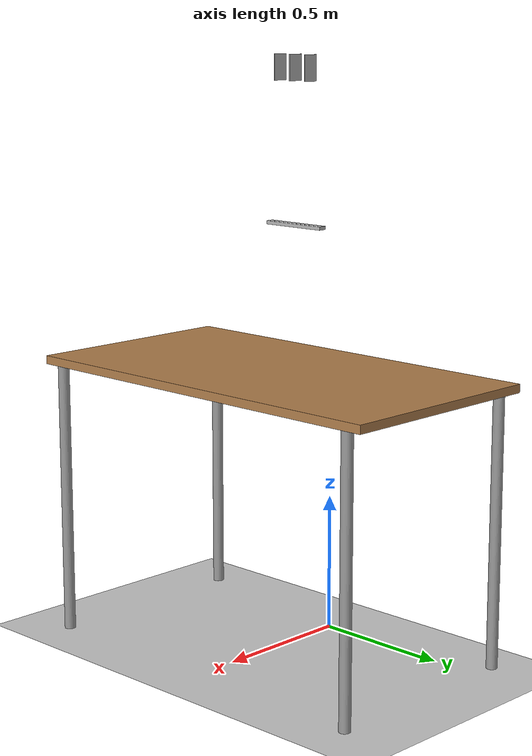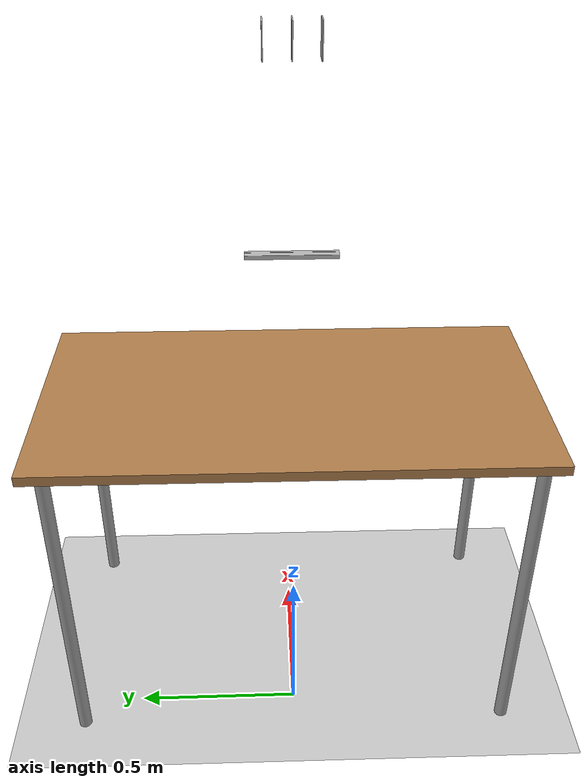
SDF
<?xml version="1.0" ?>
<sdf version="1.6">
  <world name="CRANE-X7 with card stand">

    <include>
      <uri>model://sun</uri>
    </include>

    <model name="table">
      <include>
        <uri>model://table</uri>
      </include>

      <!-- X7を机の端に配置するため、机を移動、回転する -->
      <pose>0.29 0 0 0 0 1.5708</pose>
    </model>

    <model name="card_stand">
      <include>
        <uri>model://card_stand</uri>
      </include>

      <pose>0.20 -0.125 1.5 0 0 1.5708</pose>
    </model>

    <model name="card0">
	<include>
		<uri>model://card</uri>
	</include>

	<pose>0.189 0 1.54 0 0 0</pose>
    </model>

    <model name="card1">
	    <include>
		    <uri>model://card</uri>
	    </include>

	    <pose>0.189 0.07 1.54 0 0 0</pose>
    </model>

    <model name="card2">
	    <include>
		    <uri>model://card</uri>
	    </include>

	    <pose>0.189 -0.07 1.54 0 0 0</pose>
    </model>

    <model name="ground_plane">
      <include>
        <uri>model://ground_plane</uri>
      </include>

      <joint name='ground_joint' type='fixed'>
        <parent>ground_plane::link</parent>
        <child>table::link</child>
      </joint>
    </model>
  </world>
</sdf>

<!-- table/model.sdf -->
<sdf version="1.5">
  <model name="table">
    <static>true</static>
    <link name="link">
      <collision name="surface">
        <pose>0 0 1.0 0 0 0</pose>
        <geometry>
          <box>
            <size>1.5 0.8 0.03</size>
          </box>
        </geometry>
        <surface>
          <friction>
            <ode>
              <mu>0.6</mu>
              <mu2>0.6</mu2>
            </ode>
          </friction>
        </surface>
      </collision>
      <visual name="visual1">
        <pose>0 0 1.0 0 0 0</pose>
        <geometry>
          <box>
            <size>1.5 0.8 0.03</size>
          </box>
        </geometry>
        <material>
          <script>
            <uri>model://media/materials/scripts/gazebo.material</uri>
            <name>Gazebo/Wood</name>
          </script>
        </material>
      </visual>
      <collision name="front_left_leg">
        <pose>0.68 0.38 0.5 0 0 0</pose>
        <geometry>
          <cylinder>
            <radius>0.02</radius>
            <length>1.0</length>
          </cylinder>
        </geometry>
      </collision>
      <visual name="front_left_leg">
        <pose>0.68 0.38 0.5 0 0 0</pose>
        <geometry>
          <cylinder>
            <radius>0.02</radius>
            <length>1.0</length>
          </cylinder>
        </geometry>
        <material>
          <script>
            <uri>model://media/materials/scripts/gazebo.material</uri>
            <name>Gazebo/Grey</name>
          </script>
        </material>
      </visual>
      <collision name="front_right_leg">
        <pose>0.68 -0.38 0.5 0 0 0</pose>
        <geometry>
          <cylinder>
            <radius>0.02</radius>
            <length>1.0</length>
          </cylinder>
        </geometry>
      </collision>
      <visual name="front_right_leg">
        <pose>0.68 -0.38 0.5 0 0 0</pose>
        <geometry>
          <cylinder>
            <radius>0.02</radius>
            <length>1.0</length>
          </cylinder>
        </geometry>
        <material>
          <script>
            <uri>model://media/materials/scripts/gazebo.material</uri>
            <name>Gazebo/Grey</name>
          </script>
        </material>
      </visual>
      <collision name="back_right_leg">
        <pose>-0.68 -0.38 0.5 0 0 0</pose>
        <geometry>
          <cylinder>
            <radius>0.02</radius>
            <length>1.0</length>
          </cylinder>
        </geometry>
      </collision>
      <visual name="back_right_leg">
        <pose>-0.68 -0.38 0.5 0 0 0</pose>
        <geometry>
          <cylinder>
            <radius>0.02</radius>
            <length>1.0</length>
          </cylinder>
        </geometry>
        <material>
          <script>
            <uri>model://media/materials/scripts/gazebo.material</uri>
            <name>Gazebo/Grey</name>
          </script>
        </material>
      </visual>
      <collision name="back_left_leg">
        <pose>-0.68 0.38 0.5 0 0 0</pose>
        <geometry>
          <cylinder>
            <radius>0.02</radius>
            <length>1.0</length>
          </cylinder>
        </geometry>
      </collision>
      <visual name="back_left_leg">
        <pose>-0.68 0.38 0.5 0 0 0</pose>
        <geometry>
          <cylinder>
            <radius>0.02</radius>
            <length>1.0</length>
          </cylinder>
        </geometry>
        <material>
          <script>
            <uri>model://media/materials/scripts/gazebo.material</uri>
            <name>Gazebo/Grey</name>
          </script>
        </material>
      </visual>
    </link>
  </model>
</sdf>

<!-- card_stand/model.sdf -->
<sdf version="1.6">
<model name="card_stand">
  <pose>0 0 0 0 0 0</pose>
    <link name="link">
      <inertial>
        <mass>0.0562</mass>
        <inertia>
          <ixx>0.293</ixx>
          <ixy>0.0</ixy>
          <ixz>0.0</ixz>
          <iyy>0.005</iyy>
          <iyz>0.0</iyz>
          <izz>0.297</izz>
        </inertia>
      </inertial>
      <collision name="collision">
        <geometry>
	  <mesh>
		  <uri>model://card_stand/card_stand_2mm.dae</uri>
          </mesh>
        </geometry>
      </collision>
      <visual name="visual">
        <geometry>
          <mesh>
		  <uri>model://card_stand/card_stand_2mm.dae</uri>
          </mesh>
        </geometry>
      </visual>
    </link>
  </model>
</sdf>

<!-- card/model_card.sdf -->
<sdf version="1.4">
<model name="card">
  <pose>0 0 0.5 0 0 0</pose>
    <link name="link">
      <inertial>
        <mass>1.0</mass>
        <inertia>
          <ixx>0.083</ixx>
          <ixy>0.0</ixy>
          <ixz>0.0</ixz>
          <iyy>0.083</iyy>
          <iyz>0.0</iyz>
          <izz>0.083</izz>
        </inertia>
      </inertial>
      <collision name="collision">
        <geometry>
          <box>
            <size>0.057 0.003 0.089</size>
          </box>
        </geometry>
      </collision>
      <visual name="visual">
        <geometry>
          <box>
            <size>0.057 0.003 0.089</size>
          </box>
        </geometry>
      </visual>
    </link>
  </model>
</sdf>
